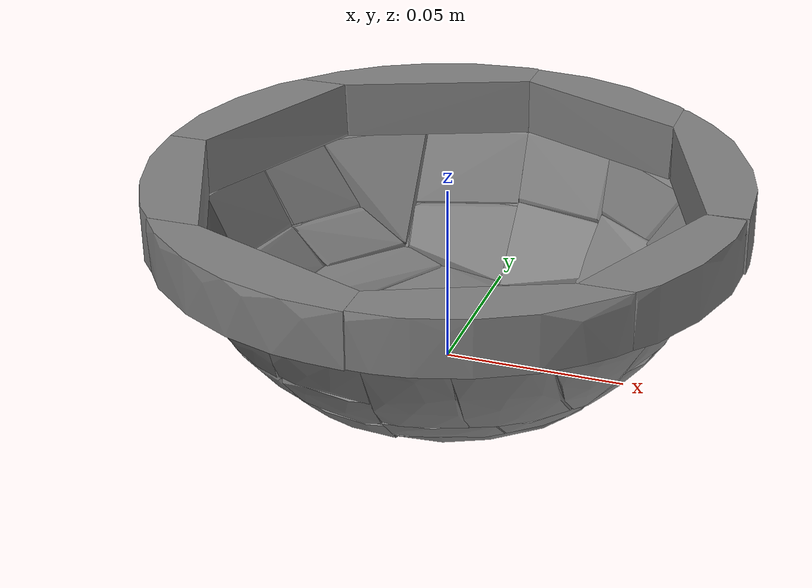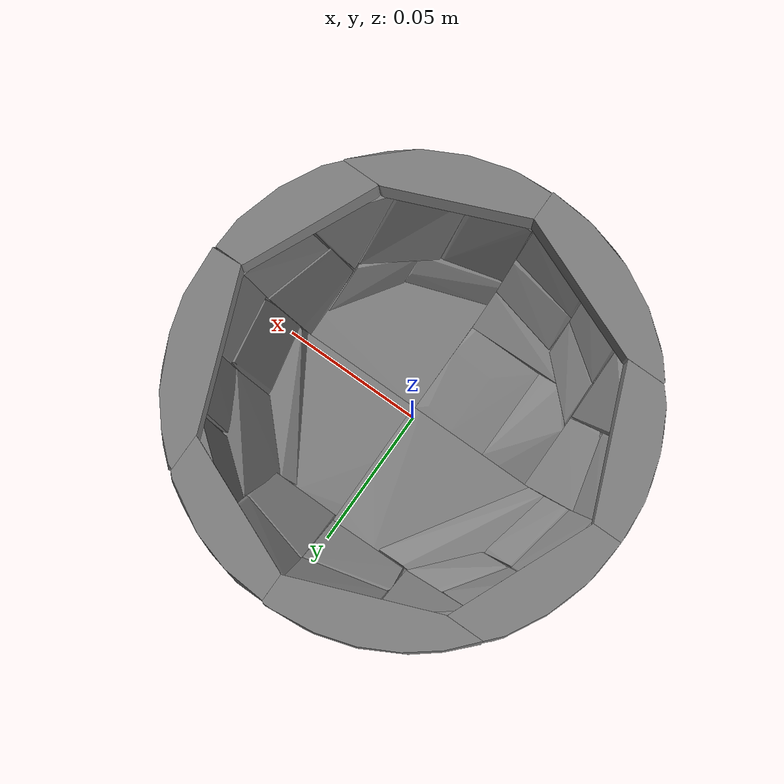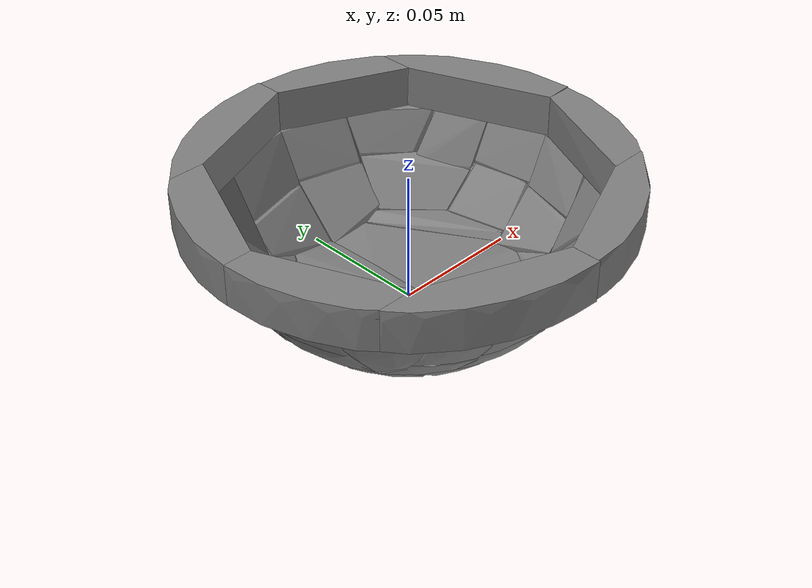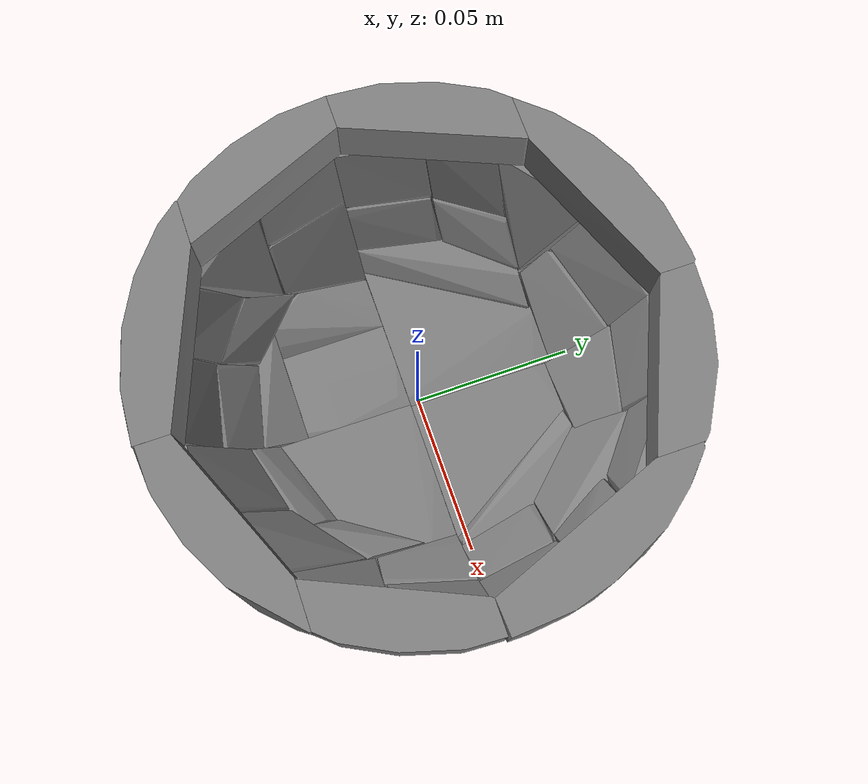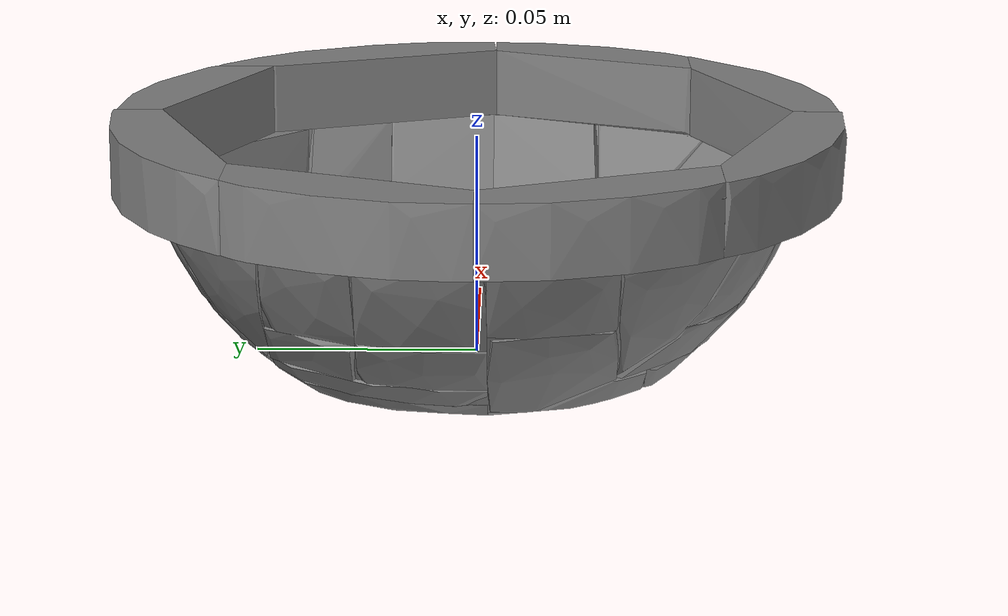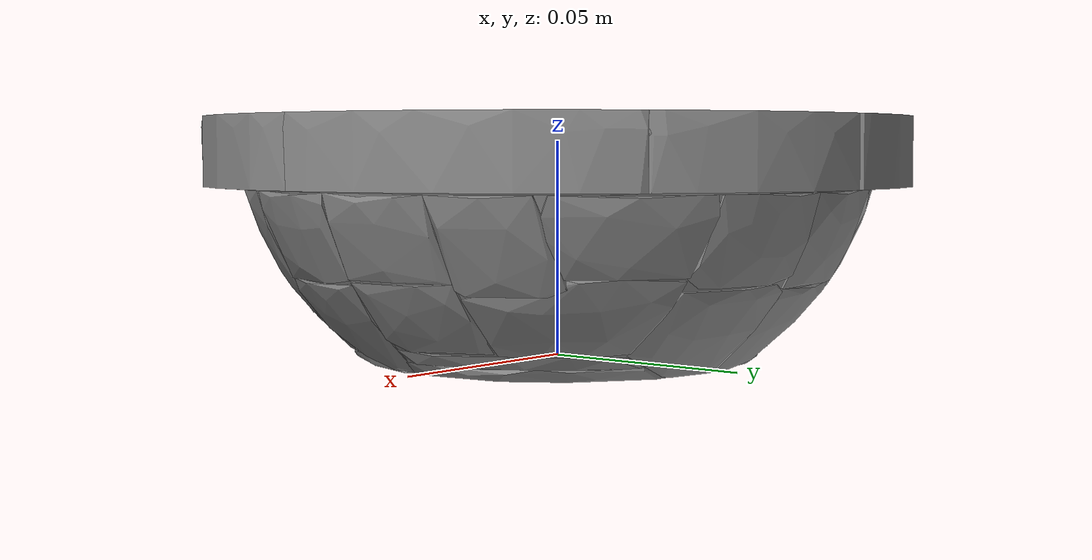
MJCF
<mujoco model="bowl">
  <asset>
    <mesh file="../../meshes/ycb/bowl/simple_mesh.stl" name="bowl_mesh" scale="1.0 1.0 1.0"/>
    <mesh file="../../meshes/ycb/bowl/bowl_hull_1.stl" name="bowl_hull_mesh_1" scale="1.0 1.0 1.0"/>
    <mesh file="../../meshes/ycb/bowl/bowl_hull_2.stl" name="bowl_hull_mesh_2" scale="1.0 1.0 1.0"/>
    <mesh file="../../meshes/ycb/bowl/bowl_hull_3.stl" name="bowl_hull_mesh_3" scale="1.0 1.0 1.0"/>
    <mesh file="../../meshes/ycb/bowl/bowl_hull_4.stl" name="bowl_hull_mesh_4" scale="1.0 1.0 1.0"/>
    <mesh file="../../meshes/ycb/bowl/bowl_hull_5.stl" name="bowl_hull_mesh_5" scale="1.0 1.0 1.0"/>
    <mesh file="../../meshes/ycb/bowl/bowl_hull_6.stl" name="bowl_hull_mesh_6" scale="1.0 1.0 1.0"/>
    <mesh file="../../meshes/ycb/bowl/bowl_hull_7.stl" name="bowl_hull_mesh_7" scale="1.0 1.0 1.0"/>
    <mesh file="../../meshes/ycb/bowl/bowl_hull_8.stl" name="bowl_hull_mesh_8" scale="1.0 1.0 1.0"/>
    <mesh file="../../meshes/ycb/bowl/bowl_hull_9.stl" name="bowl_hull_mesh_9" scale="1.0 1.0 1.0"/>
    <mesh file="../../meshes/ycb/bowl/bowl_hull_10.stl" name="bowl_hull_mesh_10" scale="1.0 1.0 1.0"/>
    <mesh file="../../meshes/ycb/bowl/bowl_hull_11.stl" name="bowl_hull_mesh_11" scale="1.0 1.0 1.0"/>
    <mesh file="../../meshes/ycb/bowl/bowl_hull_12.stl" name="bowl_hull_mesh_12" scale="1.0 1.0 1.0"/>
    <mesh file="../../meshes/ycb/bowl/bowl_hull_13.stl" name="bowl_hull_mesh_13" scale="1.0 1.0 1.0"/>
    <mesh file="../../meshes/ycb/bowl/bowl_hull_14.stl" name="bowl_hull_mesh_14" scale="1.0 1.0 1.0"/>
    <mesh file="../../meshes/ycb/bowl/bowl_hull_15.stl" name="bowl_hull_mesh_15" scale="1.0 1.0 1.0"/>
    <mesh file="../../meshes/ycb/bowl/bowl_hull_16.stl" name="bowl_hull_mesh_16" scale="1.0 1.0 1.0"/>
    <mesh file="../../meshes/ycb/bowl/bowl_hull_17.stl" name="bowl_hull_mesh_17" scale="1.0 1.0 1.0"/>
    <mesh file="../../meshes/ycb/bowl/bowl_hull_18.stl" name="bowl_hull_mesh_18" scale="1.0 1.0 1.0"/>
    <mesh file="../../meshes/ycb/bowl/bowl_hull_19.stl" name="bowl_hull_mesh_19" scale="1.0 1.0 1.0"/>
    <mesh file="../../meshes/ycb/bowl/bowl_hull_20.stl" name="bowl_hull_mesh_20" scale="1.0 1.0 1.0"/>
    <mesh file="../../meshes/ycb/bowl/bowl_hull_21.stl" name="bowl_hull_mesh_21" scale="1.0 1.0 1.0"/>
    <mesh file="../../meshes/ycb/bowl/bowl_hull_22.stl" name="bowl_hull_mesh_22" scale="1.0 1.0 1.0"/>
    <mesh file="../../meshes/ycb/bowl/bowl_hull_23.stl" name="bowl_hull_mesh_23" scale="1.0 1.0 1.0"/>
    <mesh file="../../meshes/ycb/bowl/bowl_hull_24.stl" name="bowl_hull_mesh_24" scale="1.0 1.0 1.0"/>
    <mesh file="../../meshes/ycb/bowl/bowl_hull_25.stl" name="bowl_hull_mesh_25" scale="1.0 1.0 1.0"/>
    <mesh file="../../meshes/ycb/bowl/bowl_hull_26.stl" name="bowl_hull_mesh_26" scale="1.0 1.0 1.0"/>
    <mesh file="../../meshes/ycb/bowl/bowl_hull_27.stl" name="bowl_hull_mesh_27" scale="1.0 1.0 1.0"/>
    <mesh file="../../meshes/ycb/bowl/bowl_hull_28.stl" name="bowl_hull_mesh_28" scale="1.0 1.0 1.0"/>
    <mesh file="../../meshes/ycb/bowl/bowl_hull_29.stl" name="bowl_hull_mesh_29" scale="1.0 1.0 1.0"/>
    <mesh file="../../meshes/ycb/bowl/bowl_hull_30.stl" name="bowl_hull_mesh_30" scale="1.0 1.0 1.0"/>
    <mesh file="../../meshes/ycb/bowl/bowl_hull_31.stl" name="bowl_hull_mesh_31" scale="1.0 1.0 1.0"/>
    <mesh file="../../meshes/ycb/bowl/bowl_hull_32.stl" name="bowl_hull_mesh_32" scale="1.0 1.0 1.0"/>
    <mesh file="../../meshes/ycb/bowl/bowl_hull_33.stl" name="bowl_hull_mesh_33" scale="1.0 1.0 1.0"/>
    <mesh file="../../meshes/ycb/bowl/bowl_hull_34.stl" name="bowl_hull_mesh_34" scale="1.0 1.0 1.0"/>
    <mesh file="../../meshes/ycb/bowl/bowl_hull_35.stl" name="bowl_hull_mesh_35" scale="1.0 1.0 1.0"/>
    <mesh file="../../meshes/ycb/bowl/bowl_hull_36.stl" name="bowl_hull_mesh_36" scale="1.0 1.0 1.0"/>
    <mesh file="../../meshes/ycb/bowl/bowl_hull_37.stl" name="bowl_hull_mesh_37" scale="1.0 1.0 1.0"/>
    <mesh file="../../meshes/ycb/bowl/bowl_hull_38.stl" name="bowl_hull_mesh_38" scale="1.0 1.0 1.0"/>
    <mesh file="../../meshes/ycb/bowl/bowl_hull_39.stl" name="bowl_hull_mesh_39" scale="1.0 1.0 1.0"/>
    <mesh file="../../meshes/ycb/bowl/bowl_hull_40.stl" name="bowl_hull_mesh_40" scale="1.0 1.0 1.0"/>
    <mesh file="../../meshes/ycb/bowl/bowl_hull_41.stl" name="bowl_hull_mesh_41" scale="1.0 1.0 1.0"/>
    <mesh file="../../meshes/ycb/bowl/bowl_hull_42.stl" name="bowl_hull_mesh_42" scale="1.0 1.0 1.0"/>
    <mesh file="../../meshes/ycb/bowl/bowl_hull_43.stl" name="bowl_hull_mesh_43" scale="1.0 1.0 1.0"/>
    <mesh file="../../meshes/ycb/bowl/bowl_hull_44.stl" name="bowl_hull_mesh_44" scale="1.0 1.0 1.0"/>
  </asset>
  <worldbody>
    <body>
      <body name="object">
        <geom pos="0 0 0" mesh="bowl_mesh" type="mesh" contype="0" conaffinity="0" group="1"/>
        <geom pos="0 0 0" mesh="bowl_hull_mesh_1" type="mesh" margin="0.001" solimp="0.998 0.998 0.001" solref="0.001 1" density="200" friction="0.95 0.3 0.1" group="0" condim="4"/>
        <geom pos="0 0 0" mesh="bowl_hull_mesh_2" type="mesh" margin="0.001" solimp="0.998 0.998 0.001" solref="0.001 1" density="200" friction="0.95 0.3 0.1" group="0" condim="4"/>
        <geom pos="0 0 0" mesh="bowl_hull_mesh_3" type="mesh" margin="0.001" solimp="0.998 0.998 0.001" solref="0.001 1" density="200" friction="0.95 0.3 0.1" group="0" condim="4"/>
        <geom pos="0 0 0" mesh="bowl_hull_mesh_4" type="mesh" margin="0.001" solimp="0.998 0.998 0.001" solref="0.001 1" density="200" friction="0.95 0.3 0.1" group="0" condim="4"/>
        <geom pos="0 0 0" mesh="bowl_hull_mesh_5" type="mesh" margin="0.001" solimp="0.998 0.998 0.001" solref="0.001 1" density="200" friction="0.95 0.3 0.1" group="0" condim="4"/>
        <geom pos="0 0 0" mesh="bowl_hull_mesh_6" type="mesh" margin="0.001" solimp="0.998 0.998 0.001" solref="0.001 1" density="200" friction="0.95 0.3 0.1" group="0" condim="4"/>
        <geom pos="0 0 0" mesh="bowl_hull_mesh_7" type="mesh" margin="0.001" solimp="0.998 0.998 0.001" solref="0.001 1" density="200" friction="0.95 0.3 0.1" group="0" condim="4"/>
        <geom pos="0 0 0" mesh="bowl_hull_mesh_8" type="mesh" margin="0.001" solimp="0.998 0.998 0.001" solref="0.001 1" density="200" friction="0.95 0.3 0.1" group="0" condim="4"/>
        <geom pos="0 0 0" mesh="bowl_hull_mesh_9" type="mesh" margin="0.001" solimp="0.998 0.998 0.001" solref="0.001 1" density="200" friction="0.95 0.3 0.1" group="0" condim="4"/>
        <geom pos="0 0 0" mesh="bowl_hull_mesh_10" type="mesh" margin="0.001" solimp="0.998 0.998 0.001" solref="0.001 1" density="200" friction="0.95 0.3 0.1" group="0" condim="4"/>
        <geom pos="0 0 0" mesh="bowl_hull_mesh_11" type="mesh" margin="0.001" solimp="0.998 0.998 0.001" solref="0.001 1" density="200" friction="0.95 0.3 0.1" group="0" condim="4"/>
        <geom pos="0 0 0" mesh="bowl_hull_mesh_12" type="mesh" margin="0.001" solimp="0.998 0.998 0.001" solref="0.001 1" density="200" friction="0.95 0.3 0.1" group="0" condim="4"/>
        <geom pos="0 0 0" mesh="bowl_hull_mesh_13" type="mesh" margin="0.001" solimp="0.998 0.998 0.001" solref="0.001 1" density="200" friction="0.95 0.3 0.1" group="0" condim="4"/>
        <geom pos="0 0 0" mesh="bowl_hull_mesh_14" type="mesh" margin="0.001" solimp="0.998 0.998 0.001" solref="0.001 1" density="200" friction="0.95 0.3 0.1" group="0" condim="4"/>
        <geom pos="0 0 0" mesh="bowl_hull_mesh_15" type="mesh" margin="0.001" solimp="0.998 0.998 0.001" solref="0.001 1" density="200" friction="0.95 0.3 0.1" group="0" condim="4"/>
        <geom pos="0 0 0" mesh="bowl_hull_mesh_16" type="mesh" margin="0.001" solimp="0.998 0.998 0.001" solref="0.001 1" density="200" friction="0.95 0.3 0.1" group="0" condim="4"/>
        <geom pos="0 0 0" mesh="bowl_hull_mesh_17" type="mesh" margin="0.001" solimp="0.998 0.998 0.001" solref="0.001 1" density="200" friction="0.95 0.3 0.1" group="0" condim="4"/>
        <geom pos="0 0 0" mesh="bowl_hull_mesh_18" type="mesh" margin="0.001" solimp="0.998 0.998 0.001" solref="0.001 1" density="200" friction="0.95 0.3 0.1" group="0" condim="4"/>
        <geom pos="0 0 0" mesh="bowl_hull_mesh_19" type="mesh" margin="0.001" solimp="0.998 0.998 0.001" solref="0.001 1" density="200" friction="0.95 0.3 0.1" group="0" condim="4"/>
        <geom pos="0 0 0" mesh="bowl_hull_mesh_20" type="mesh" margin="0.001" solimp="0.998 0.998 0.001" solref="0.001 1" density="200" friction="0.95 0.3 0.1" group="0" condim="4"/>
        <geom pos="0 0 0" mesh="bowl_hull_mesh_21" type="mesh" margin="0.001" solimp="0.998 0.998 0.001" solref="0.001 1" density="200" friction="0.95 0.3 0.1" group="0" condim="4"/>
        <geom pos="0 0 0" mesh="bowl_hull_mesh_22" type="mesh" margin="0.001" solimp="0.998 0.998 0.001" solref="0.001 1" density="200" friction="0.95 0.3 0.1" group="0" condim="4"/>
        <geom pos="0 0 0" mesh="bowl_hull_mesh_23" type="mesh" margin="0.001" solimp="0.998 0.998 0.001" solref="0.001 1" density="200" friction="0.95 0.3 0.1" group="0" condim="4"/>
        <geom pos="0 0 0" mesh="bowl_hull_mesh_24" type="mesh" margin="0.001" solimp="0.998 0.998 0.001" solref="0.001 1" density="200" friction="0.95 0.3 0.1" group="0" condim="4"/>
        <geom pos="0 0 0" mesh="bowl_hull_mesh_25" type="mesh" margin="0.001" solimp="0.998 0.998 0.001" solref="0.001 1" density="200" friction="0.95 0.3 0.1" group="0" condim="4"/>
        <geom pos="0 0 0" mesh="bowl_hull_mesh_26" type="mesh" margin="0.001" solimp="0.998 0.998 0.001" solref="0.001 1" density="200" friction="0.95 0.3 0.1" group="0" condim="4"/>
        <geom pos="0 0 0" mesh="bowl_hull_mesh_27" type="mesh" margin="0.001" solimp="0.998 0.998 0.001" solref="0.001 1" density="200" friction="0.95 0.3 0.1" group="0" condim="4"/>
        <geom pos="0 0 0" mesh="bowl_hull_mesh_28" type="mesh" margin="0.001" solimp="0.998 0.998 0.001" solref="0.001 1" density="200" friction="0.95 0.3 0.1" group="0" condim="4"/>
        <geom pos="0 0 0" mesh="bowl_hull_mesh_29" type="mesh" margin="0.001" solimp="0.998 0.998 0.001" solref="0.001 1" density="200" friction="0.95 0.3 0.1" group="0" condim="4"/>
        <geom pos="0 0 0" mesh="bowl_hull_mesh_30" type="mesh" margin="0.001" solimp="0.998 0.998 0.001" solref="0.001 1" density="200" friction="0.95 0.3 0.1" group="0" condim="4"/>
        <geom pos="0 0 0" mesh="bowl_hull_mesh_31" type="mesh" margin="0.001" solimp="0.998 0.998 0.001" solref="0.001 1" density="200" friction="0.95 0.3 0.1" group="0" condim="4"/>
        <geom pos="0 0 0" mesh="bowl_hull_mesh_32" type="mesh" margin="0.001" solimp="0.998 0.998 0.001" solref="0.001 1" density="200" friction="0.95 0.3 0.1" group="0" condim="4"/>
        <geom pos="0 0 0" mesh="bowl_hull_mesh_33" type="mesh" margin="0.001" solimp="0.998 0.998 0.001" solref="0.001 1" density="200" friction="0.95 0.3 0.1" group="0" condim="4"/>
        <geom pos="0 0 0" mesh="bowl_hull_mesh_34" type="mesh" margin="0.001" solimp="0.998 0.998 0.001" solref="0.001 1" density="200" friction="0.95 0.3 0.1" group="0" condim="4"/>
        <geom pos="0 0 0" mesh="bowl_hull_mesh_35" type="mesh" margin="0.001" solimp="0.998 0.998 0.001" solref="0.001 1" density="200" friction="0.95 0.3 0.1" group="0" condim="4"/>
        <geom pos="0 0 0" mesh="bowl_hull_mesh_36" type="mesh" margin="0.001" solimp="0.998 0.998 0.001" solref="0.001 1" density="200" friction="0.95 0.3 0.1" group="0" condim="4"/>
        <geom pos="0 0 0" mesh="bowl_hull_mesh_37" type="mesh" margin="0.001" solimp="0.998 0.998 0.001" solref="0.001 1" density="200" friction="0.95 0.3 0.1" group="0" condim="4"/>
        <geom pos="0 0 0" mesh="bowl_hull_mesh_38" type="mesh" margin="0.001" solimp="0.998 0.998 0.001" solref="0.001 1" density="200" friction="0.95 0.3 0.1" group="0" condim="4"/>
        <geom pos="0 0 0" mesh="bowl_hull_mesh_39" type="mesh" margin="0.001" solimp="0.998 0.998 0.001" solref="0.001 1" density="200" friction="0.95 0.3 0.1" group="0" condim="4"/>
        <geom pos="0 0 0" mesh="bowl_hull_mesh_40" type="mesh" margin="0.001" solimp="0.998 0.998 0.001" solref="0.001 1" density="200" friction="0.95 0.3 0.1" group="0" condim="4"/>
        <geom pos="0 0 0" mesh="bowl_hull_mesh_41" type="mesh" margin="0.001" solimp="0.998 0.998 0.001" solref="0.001 1" density="200" friction="0.95 0.3 0.1" group="0" condim="4"/>
        <geom pos="0 0 0" mesh="bowl_hull_mesh_42" type="mesh" margin="0.001" solimp="0.998 0.998 0.001" solref="0.001 1" density="200" friction="0.95 0.3 0.1" group="0" condim="4"/>
        <geom pos="0 0 0" mesh="bowl_hull_mesh_43" type="mesh" margin="0.001" solimp="0.998 0.998 0.001" solref="0.001 1" density="200" friction="0.95 0.3 0.1" group="0" condim="4"/>
        <geom pos="0 0 0" mesh="bowl_hull_mesh_44" type="mesh" margin="0.001" solimp="0.998 0.998 0.001" solref="0.001 1" density="200" friction="0.95 0.3 0.1" group="0" condim="4"/>
      </body>
      <site rgba="0 0 0 0" size="0.005" pos="0 0 -0.001" name="bottom_site"/>
      <site rgba="0 0 0 0" size="0.005" pos="0 0 0.02" name="top_site"/>
      <site rgba="0 0 0 0" size="0.005" pos="0.0375 0.02 0" name="horizontal_radius_site"/>
    </body>
  </worldbody>
</mujoco>
